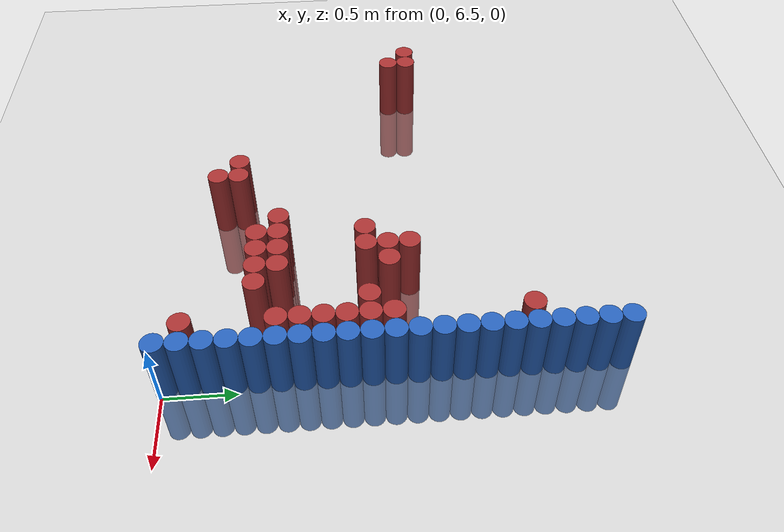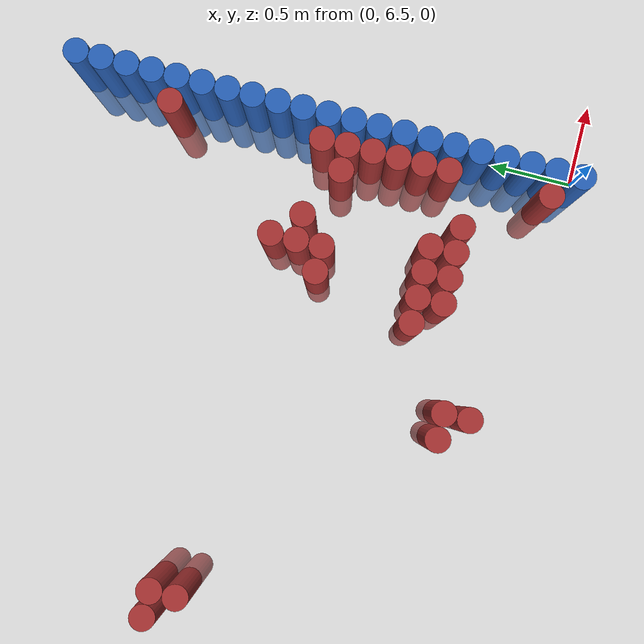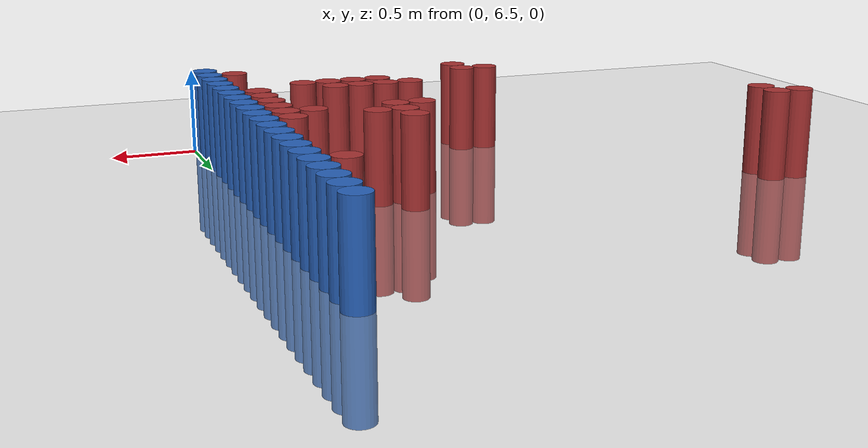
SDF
<sdf version="1.6">
 <world name="default">
  <model name="ground_plane">
   <static>1</static>
   <link name="link">
    <collision name="collision">
     <geometry><plane><normal>0 0 1</normal><size>100 100</size></plane></geometry>
     <surface><friction><ode><mu>100</mu><mu2>50</mu2></ode></friction></surface>
    </collision>
    <visual name="visual">
     <cast_shadows>0</cast_shadows>
     <geometry><plane><normal>0 0 1</normal><size>100 100</size></plane></geometry>
     <material>
      <script><uri>file://media/materials/scripts/gazebo.material</uri><name>Gazebo/Grey</name></script>
     </material>
    </visual>
   </link>
  </model>
  <model name="unit_cylinder_162">
   <static>1</static>
   <pose>-3.075000 8.325000 0.000000 0.000000 0.000000 0.000000</pose>
   <link name="link">
    <inertial>
     <mass>1</mass>
     <inertia><ixx>0.145833</ixx><ixy>0</ixy><ixz>0</ixz><iyy>0.145833</iyy><iyz>0</iyz><izz>0.125</izz></inertia>
    </inertial>
    <collision name="collision">
     <geometry><cylinder><radius>0.075000</radius><length>1</length></cylinder></geometry>
    </collision>
    <visual name="visual">
     <geometry><cylinder><radius>0.075000</radius><length>1</length></cylinder></geometry>
     <material>
      <ambient>0.648000 0.192000 0.192000 1</ambient>
      <diffuse>0.648000 0.192000 0.192000 1</diffuse>
     </material>
     <material>
      <script><name>Gazebo/Grey</name><uri>file://media/materials/scripts/gazebo.material</uri></script>
     </material>
    </visual>
   </link>
  </model>
  <model name="unit_cylinder_163">
   <static>1</static>
   <pose>-2.925000 8.175000 0.000000 0.000000 0.000000 0.000000</pose>
   <link name="link">
    <inertial>
     <mass>1</mass>
     <inertia><ixx>0.145833</ixx><ixy>0</ixy><ixz>0</ixz><iyy>0.145833</iyy><iyz>0</iyz><izz>0.125</izz></inertia>
    </inertial>
    <collision name="collision">
     <geometry><cylinder><radius>0.075000</radius><length>1</length></cylinder></geometry>
    </collision>
    <visual name="visual">
     <geometry><cylinder><radius>0.075000</radius><length>1</length></cylinder></geometry>
     <material>
      <ambient>0.648000 0.192000 0.192000 1</ambient>
      <diffuse>0.648000 0.192000 0.192000 1</diffuse>
     </material>
     <material>
      <script><name>Gazebo/Grey</name><uri>file://media/materials/scripts/gazebo.material</uri></script>
     </material>
    </visual>
   </link>
  </model>
  <model name="unit_cylinder_164">
   <static>1</static>
   <pose>-2.925000 8.325000 0.000000 0.000000 0.000000 0.000000</pose>
   <link name="link">
    <inertial>
     <mass>1</mass>
     <inertia><ixx>0.145833</ixx><ixy>0</ixy><ixz>0</ixz><iyy>0.145833</iyy><iyz>0</iyz><izz>0.125</izz></inertia>
    </inertial>
    <collision name="collision">
     <geometry><cylinder><radius>0.075000</radius><length>1</length></cylinder></geometry>
    </collision>
    <visual name="visual">
     <geometry><cylinder><radius>0.075000</radius><length>1</length></cylinder></geometry>
     <material>
      <ambient>0.648000 0.192000 0.192000 1</ambient>
      <diffuse>0.648000 0.192000 0.192000 1</diffuse>
     </material>
     <material>
      <script><name>Gazebo/Grey</name><uri>file://media/materials/scripts/gazebo.material</uri></script>
     </material>
    </visual>
   </link>
  </model>
  <model name="unit_cylinder_168">
   <static>1</static>
   <pose>-1.725000 6.975000 0.000000 0.000000 0.000000 0.000000</pose>
   <link name="link">
    <inertial>
     <mass>1</mass>
     <inertia><ixx>0.145833</ixx><ixy>0</ixy><ixz>0</ixz><iyy>0.145833</iyy><iyz>0</iyz><izz>0.125</izz></inertia>
    </inertial>
    <collision name="collision">
     <geometry><cylinder><radius>0.075000</radius><length>1</length></cylinder></geometry>
    </collision>
    <visual name="visual">
     <geometry><cylinder><radius>0.075000</radius><length>1</length></cylinder></geometry>
     <material>
      <ambient>0.648000 0.192000 0.192000 1</ambient>
      <diffuse>0.648000 0.192000 0.192000 1</diffuse>
     </material>
     <material>
      <script><name>Gazebo/Grey</name><uri>file://media/materials/scripts/gazebo.material</uri></script>
     </material>
    </visual>
   </link>
  </model>
  <model name="unit_cylinder_169">
   <static>1</static>
   <pose>-1.575000 6.825000 0.000000 0.000000 0.000000 0.000000</pose>
   <link name="link">
    <inertial>
     <mass>1</mass>
     <inertia><ixx>0.145833</ixx><ixy>0</ixy><ixz>0</ixz><iyy>0.145833</iyy><iyz>0</iyz><izz>0.125</izz></inertia>
    </inertial>
    <collision name="collision">
     <geometry><cylinder><radius>0.075000</radius><length>1</length></cylinder></geometry>
    </collision>
    <visual name="visual">
     <geometry><cylinder><radius>0.075000</radius><length>1</length></cylinder></geometry>
     <material>
      <ambient>0.648000 0.192000 0.192000 1</ambient>
      <diffuse>0.648000 0.192000 0.192000 1</diffuse>
     </material>
     <material>
      <script><name>Gazebo/Grey</name><uri>file://media/materials/scripts/gazebo.material</uri></script>
     </material>
    </visual>
   </link>
  </model>
  <model name="unit_cylinder_170">
   <static>1</static>
   <pose>-1.575000 6.975000 0.000000 0.000000 0.000000 0.000000</pose>
   <link name="link">
    <inertial>
     <mass>1</mass>
     <inertia><ixx>0.145833</ixx><ixy>0</ixy><ixz>0</ixz><iyy>0.145833</iyy><iyz>0</iyz><izz>0.125</izz></inertia>
    </inertial>
    <collision name="collision">
     <geometry><cylinder><radius>0.075000</radius><length>1</length></cylinder></geometry>
    </collision>
    <visual name="visual">
     <geometry><cylinder><radius>0.075000</radius><length>1</length></cylinder></geometry>
     <material>
      <ambient>0.648000 0.192000 0.192000 1</ambient>
      <diffuse>0.648000 0.192000 0.192000 1</diffuse>
     </material>
     <material>
      <script><name>Gazebo/Grey</name><uri>file://media/materials/scripts/gazebo.material</uri></script>
     </material>
    </visual>
   </link>
  </model>
  <model name="unit_cylinder_171">
   <static>1</static>
   <pose>-1.125000 7.275000 0.000000 0.000000 0.000000 0.000000</pose>
   <link name="link">
    <inertial>
     <mass>1</mass>
     <inertia><ixx>0.145833</ixx><ixy>0</ixy><ixz>0</ixz><iyy>0.145833</iyy><iyz>0</iyz><izz>0.125</izz></inertia>
    </inertial>
    <collision name="collision">
     <geometry><cylinder><radius>0.075000</radius><length>1</length></cylinder></geometry>
    </collision>
    <visual name="visual">
     <geometry><cylinder><radius>0.075000</radius><length>1</length></cylinder></geometry>
     <material>
      <ambient>0.648000 0.192000 0.192000 1</ambient>
      <diffuse>0.648000 0.192000 0.192000 1</diffuse>
     </material>
     <material>
      <script><name>Gazebo/Grey</name><uri>file://media/materials/scripts/gazebo.material</uri></script>
     </material>
    </visual>
   </link>
  </model>
  <model name="unit_cylinder_175">
   <static>1</static>
   <pose>-0.975000 7.125000 0.000000 0.000000 0.000000 0.000000</pose>
   <link name="link">
    <inertial>
     <mass>1</mass>
     <inertia><ixx>0.145833</ixx><ixy>0</ixy><ixz>0</ixz><iyy>0.145833</iyy><iyz>0</iyz><izz>0.125</izz></inertia>
    </inertial>
    <collision name="collision">
     <geometry><cylinder><radius>0.075000</radius><length>1</length></cylinder></geometry>
    </collision>
    <visual name="visual">
     <geometry><cylinder><radius>0.075000</radius><length>1</length></cylinder></geometry>
     <material>
      <ambient>0.648000 0.192000 0.192000 1</ambient>
      <diffuse>0.648000 0.192000 0.192000 1</diffuse>
     </material>
     <material>
      <script><name>Gazebo/Grey</name><uri>file://media/materials/scripts/gazebo.material</uri></script>
     </material>
    </visual>
   </link>
  </model>
  <model name="unit_cylinder_176">
   <static>1</static>
   <pose>-0.975000 7.275000 0.000000 0.000000 0.000000 0.000000</pose>
   <link name="link">
    <inertial>
     <mass>1</mass>
     <inertia><ixx>0.145833</ixx><ixy>0</ixy><ixz>0</ixz><iyy>0.145833</iyy><iyz>0</iyz><izz>0.125</izz></inertia>
    </inertial>
    <collision name="collision">
     <geometry><cylinder><radius>0.075000</radius><length>1</length></cylinder></geometry>
    </collision>
    <visual name="visual">
     <geometry><cylinder><radius>0.075000</radius><length>1</length></cylinder></geometry>
     <material>
      <ambient>0.648000 0.192000 0.192000 1</ambient>
      <diffuse>0.648000 0.192000 0.192000 1</diffuse>
     </material>
     <material>
      <script><name>Gazebo/Grey</name><uri>file://media/materials/scripts/gazebo.material</uri></script>
     </material>
    </visual>
   </link>
  </model>
  <model name="unit_cylinder_177">
   <static>1</static>
   <pose>-0.975000 7.875000 0.000000 0.000000 0.000000 0.000000</pose>
   <link name="link">
    <inertial>
     <mass>1</mass>
     <inertia><ixx>0.145833</ixx><ixy>0</ixy><ixz>0</ixz><iyy>0.145833</iyy><iyz>0</iyz><izz>0.125</izz></inertia>
    </inertial>
    <collision name="collision">
     <geometry><cylinder><radius>0.075000</radius><length>1</length></cylinder></geometry>
    </collision>
    <visual name="visual">
     <geometry><cylinder><radius>0.075000</radius><length>1</length></cylinder></geometry>
     <material>
      <ambient>0.648000 0.192000 0.192000 1</ambient>
      <diffuse>0.648000 0.192000 0.192000 1</diffuse>
     </material>
     <material>
      <script><name>Gazebo/Grey</name><uri>file://media/materials/scripts/gazebo.material</uri></script>
     </material>
    </visual>
   </link>
  </model>
  <model name="unit_cylinder_179">
   <static>1</static>
   <pose>-0.825000 7.125000 0.000000 0.000000 0.000000 0.000000</pose>
   <link name="link">
    <inertial>
     <mass>1</mass>
     <inertia><ixx>0.145833</ixx><ixy>0</ixy><ixz>0</ixz><iyy>0.145833</iyy><iyz>0</iyz><izz>0.125</izz></inertia>
    </inertial>
    <collision name="collision">
     <geometry><cylinder><radius>0.075000</radius><length>1</length></cylinder></geometry>
    </collision>
    <visual name="visual">
     <geometry><cylinder><radius>0.075000</radius><length>1</length></cylinder></geometry>
     <material>
      <ambient>0.648000 0.192000 0.192000 1</ambient>
      <diffuse>0.648000 0.192000 0.192000 1</diffuse>
     </material>
     <material>
      <script><name>Gazebo/Grey</name><uri>file://media/materials/scripts/gazebo.material</uri></script>
     </material>
    </visual>
   </link>
  </model>
  <model name="unit_cylinder_180">
   <static>1</static>
   <pose>-0.825000 7.275000 0.000000 0.000000 0.000000 0.000000</pose>
   <link name="link">
    <inertial>
     <mass>1</mass>
     <inertia><ixx>0.145833</ixx><ixy>0</ixy><ixz>0</ixz><iyy>0.145833</iyy><iyz>0</iyz><izz>0.125</izz></inertia>
    </inertial>
    <collision name="collision">
     <geometry><cylinder><radius>0.075000</radius><length>1</length></cylinder></geometry>
    </collision>
    <visual name="visual">
     <geometry><cylinder><radius>0.075000</radius><length>1</length></cylinder></geometry>
     <material>
      <ambient>0.648000 0.192000 0.192000 1</ambient>
      <diffuse>0.648000 0.192000 0.192000 1</diffuse>
     </material>
     <material>
      <script><name>Gazebo/Grey</name><uri>file://media/materials/scripts/gazebo.material</uri></script>
     </material>
    </visual>
   </link>
  </model>
  <model name="unit_cylinder_181">
   <static>1</static>
   <pose>-0.825000 7.875000 0.000000 0.000000 0.000000 0.000000</pose>
   <link name="link">
    <inertial>
     <mass>1</mass>
     <inertia><ixx>0.145833</ixx><ixy>0</ixy><ixz>0</ixz><iyy>0.145833</iyy><iyz>0</iyz><izz>0.125</izz></inertia>
    </inertial>
    <collision name="collision">
     <geometry><cylinder><radius>0.075000</radius><length>1</length></cylinder></geometry>
    </collision>
    <visual name="visual">
     <geometry><cylinder><radius>0.075000</radius><length>1</length></cylinder></geometry>
     <material>
      <ambient>0.648000 0.192000 0.192000 1</ambient>
      <diffuse>0.648000 0.192000 0.192000 1</diffuse>
     </material>
     <material>
      <script><name>Gazebo/Grey</name><uri>file://media/materials/scripts/gazebo.material</uri></script>
     </material>
    </visual>
   </link>
  </model>
  <model name="unit_cylinder_182">
   <static>1</static>
   <pose>-0.825000 8.025000 0.000000 0.000000 0.000000 0.000000</pose>
   <link name="link">
    <inertial>
     <mass>1</mass>
     <inertia><ixx>0.145833</ixx><ixy>0</ixy><ixz>0</ixz><iyy>0.145833</iyy><iyz>0</iyz><izz>0.125</izz></inertia>
    </inertial>
    <collision name="collision">
     <geometry><cylinder><radius>0.075000</radius><length>1</length></cylinder></geometry>
    </collision>
    <visual name="visual">
     <geometry><cylinder><radius>0.075000</radius><length>1</length></cylinder></geometry>
     <material>
      <ambient>0.648000 0.192000 0.192000 1</ambient>
      <diffuse>0.648000 0.192000 0.192000 1</diffuse>
     </material>
     <material>
      <script><name>Gazebo/Grey</name><uri>file://media/materials/scripts/gazebo.material</uri></script>
     </material>
    </visual>
   </link>
  </model>
  <model name="unit_cylinder_183">
   <static>1</static>
   <pose>-0.825000 8.175000 0.000000 0.000000 0.000000 0.000000</pose>
   <link name="link">
    <inertial>
     <mass>1</mass>
     <inertia><ixx>0.145833</ixx><ixy>0</ixy><ixz>0</ixz><iyy>0.145833</iyy><iyz>0</iyz><izz>0.125</izz></inertia>
    </inertial>
    <collision name="collision">
     <geometry><cylinder><radius>0.075000</radius><length>1</length></cylinder></geometry>
    </collision>
    <visual name="visual">
     <geometry><cylinder><radius>0.075000</radius><length>1</length></cylinder></geometry>
     <material>
      <ambient>0.648000 0.192000 0.192000 1</ambient>
      <diffuse>0.648000 0.192000 0.192000 1</diffuse>
     </material>
     <material>
      <script><name>Gazebo/Grey</name><uri>file://media/materials/scripts/gazebo.material</uri></script>
     </material>
    </visual>
   </link>
  </model>
  <model name="unit_cylinder_184">
   <static>1</static>
   <pose>-0.675000 7.125000 0.000000 0.000000 0.000000 0.000000</pose>
   <link name="link">
    <inertial>
     <mass>1</mass>
     <inertia><ixx>0.145833</ixx><ixy>0</ixy><ixz>0</ixz><iyy>0.145833</iyy><iyz>0</iyz><izz>0.125</izz></inertia>
    </inertial>
    <collision name="collision">
     <geometry><cylinder><radius>0.075000</radius><length>1</length></cylinder></geometry>
    </collision>
    <visual name="visual">
     <geometry><cylinder><radius>0.075000</radius><length>1</length></cylinder></geometry>
     <material>
      <ambient>0.648000 0.192000 0.192000 1</ambient>
      <diffuse>0.648000 0.192000 0.192000 1</diffuse>
     </material>
     <material>
      <script><name>Gazebo/Grey</name><uri>file://media/materials/scripts/gazebo.material</uri></script>
     </material>
    </visual>
   </link>
  </model>
  <model name="unit_cylinder_185">
   <static>1</static>
   <pose>-0.675000 7.275000 0.000000 0.000000 0.000000 0.000000</pose>
   <link name="link">
    <inertial>
     <mass>1</mass>
     <inertia><ixx>0.145833</ixx><ixy>0</ixy><ixz>0</ixz><iyy>0.145833</iyy><iyz>0</iyz><izz>0.125</izz></inertia>
    </inertial>
    <collision name="collision">
     <geometry><cylinder><radius>0.075000</radius><length>1</length></cylinder></geometry>
    </collision>
    <visual name="visual">
     <geometry><cylinder><radius>0.075000</radius><length>1</length></cylinder></geometry>
     <material>
      <ambient>0.648000 0.192000 0.192000 1</ambient>
      <diffuse>0.648000 0.192000 0.192000 1</diffuse>
     </material>
     <material>
      <script><name>Gazebo/Grey</name><uri>file://media/materials/scripts/gazebo.material</uri></script>
     </material>
    </visual>
   </link>
  </model>
  <model name="unit_cylinder_186">
   <static>1</static>
   <pose>-0.675000 8.025000 0.000000 0.000000 0.000000 0.000000</pose>
   <link name="link">
    <inertial>
     <mass>1</mass>
     <inertia><ixx>0.145833</ixx><ixy>0</ixy><ixz>0</ixz><iyy>0.145833</iyy><iyz>0</iyz><izz>0.125</izz></inertia>
    </inertial>
    <collision name="collision">
     <geometry><cylinder><radius>0.075000</radius><length>1</length></cylinder></geometry>
    </collision>
    <visual name="visual">
     <geometry><cylinder><radius>0.075000</radius><length>1</length></cylinder></geometry>
     <material>
      <ambient>0.648000 0.192000 0.192000 1</ambient>
      <diffuse>0.648000 0.192000 0.192000 1</diffuse>
     </material>
     <material>
      <script><name>Gazebo/Grey</name><uri>file://media/materials/scripts/gazebo.material</uri></script>
     </material>
    </visual>
   </link>
  </model>
  <model name="unit_cylinder_188">
   <static>1</static>
   <pose>-0.525000 7.125000 0.000000 0.000000 0.000000 0.000000</pose>
   <link name="link">
    <inertial>
     <mass>1</mass>
     <inertia><ixx>0.145833</ixx><ixy>0</ixy><ixz>0</ixz><iyy>0.145833</iyy><iyz>0</iyz><izz>0.125</izz></inertia>
    </inertial>
    <collision name="collision">
     <geometry><cylinder><radius>0.075000</radius><length>1</length></cylinder></geometry>
    </collision>
    <visual name="visual">
     <geometry><cylinder><radius>0.075000</radius><length>1</length></cylinder></geometry>
     <material>
      <ambient>0.648000 0.192000 0.192000 1</ambient>
      <diffuse>0.648000 0.192000 0.192000 1</diffuse>
     </material>
     <material>
      <script><name>Gazebo/Grey</name><uri>file://media/materials/scripts/gazebo.material</uri></script>
     </material>
    </visual>
   </link>
  </model>
  <model name="unit_cylinder_193">
   <static>1</static>
   <pose>-0.375000 7.875000 0.000000 0.000000 0.000000 0.000000</pose>
   <link name="link">
    <inertial>
     <mass>1</mass>
     <inertia><ixx>0.145833</ixx><ixy>0</ixy><ixz>0</ixz><iyy>0.145833</iyy><iyz>0</iyz><izz>0.125</izz></inertia>
    </inertial>
    <collision name="collision">
     <geometry><cylinder><radius>0.075000</radius><length>1</length></cylinder></geometry>
    </collision>
    <visual name="visual">
     <geometry><cylinder><radius>0.075000</radius><length>1</length></cylinder></geometry>
     <material>
      <ambient>0.648000 0.192000 0.192000 1</ambient>
      <diffuse>0.648000 0.192000 0.192000 1</diffuse>
     </material>
     <material>
      <script><name>Gazebo/Grey</name><uri>file://media/materials/scripts/gazebo.material</uri></script>
     </material>
    </visual>
   </link>
  </model>
  <model name="unit_cylinder_204">
   <static>1</static>
   <pose>-0.225000 6.675000 0.000000 0.000000 0.000000 0.000000</pose>
   <link name="link">
    <inertial>
     <mass>1</mass>
     <inertia><ixx>0.145833</ixx><ixy>0</ixy><ixz>0</ixz><iyy>0.145833</iyy><iyz>0</iyz><izz>0.125</izz></inertia>
    </inertial>
    <collision name="collision">
     <geometry><cylinder><radius>0.075000</radius><length>1</length></cylinder></geometry>
    </collision>
    <visual name="visual">
     <geometry><cylinder><radius>0.075000</radius><length>1</length></cylinder></geometry>
     <material>
      <ambient>0.648000 0.192000 0.192000 1</ambient>
      <diffuse>0.648000 0.192000 0.192000 1</diffuse>
     </material>
     <material>
      <script><name>Gazebo/Grey</name><uri>file://media/materials/scripts/gazebo.material</uri></script>
     </material>
    </visual>
   </link>
  </model>
  <model name="unit_cylinder_205">
   <static>1</static>
   <pose>-0.225000 7.275000 0.000000 0.000000 0.000000 0.000000</pose>
   <link name="link">
    <inertial>
     <mass>1</mass>
     <inertia><ixx>0.145833</ixx><ixy>0</ixy><ixz>0</ixz><iyy>0.145833</iyy><iyz>0</iyz><izz>0.125</izz></inertia>
    </inertial>
    <collision name="collision">
     <geometry><cylinder><radius>0.075000</radius><length>1</length></cylinder></geometry>
    </collision>
    <visual name="visual">
     <geometry><cylinder><radius>0.075000</radius><length>1</length></cylinder></geometry>
     <material>
      <ambient>0.648000 0.192000 0.192000 1</ambient>
      <diffuse>0.648000 0.192000 0.192000 1</diffuse>
     </material>
     <material>
      <script><name>Gazebo/Grey</name><uri>file://media/materials/scripts/gazebo.material</uri></script>
     </material>
    </visual>
   </link>
  </model>
  <model name="unit_cylinder_206">
   <static>1</static>
   <pose>-0.225000 7.425000 0.000000 0.000000 0.000000 0.000000</pose>
   <link name="link">
    <inertial>
     <mass>1</mass>
     <inertia><ixx>0.145833</ixx><ixy>0</ixy><ixz>0</ixz><iyy>0.145833</iyy><iyz>0</iyz><izz>0.125</izz></inertia>
    </inertial>
    <collision name="collision">
     <geometry><cylinder><radius>0.075000</radius><length>1</length></cylinder></geometry>
    </collision>
    <visual name="visual">
     <geometry><cylinder><radius>0.075000</radius><length>1</length></cylinder></geometry>
     <material>
      <ambient>0.648000 0.192000 0.192000 1</ambient>
      <diffuse>0.648000 0.192000 0.192000 1</diffuse>
     </material>
     <material>
      <script><name>Gazebo/Grey</name><uri>file://media/materials/scripts/gazebo.material</uri></script>
     </material>
    </visual>
   </link>
  </model>
  <model name="unit_cylinder_207">
   <static>1</static>
   <pose>-0.225000 7.575000 0.000000 0.000000 0.000000 0.000000</pose>
   <link name="link">
    <inertial>
     <mass>1</mass>
     <inertia><ixx>0.145833</ixx><ixy>0</ixy><ixz>0</ixz><iyy>0.145833</iyy><iyz>0</iyz><izz>0.125</izz></inertia>
    </inertial>
    <collision name="collision">
     <geometry><cylinder><radius>0.075000</radius><length>1</length></cylinder></geometry>
    </collision>
    <visual name="visual">
     <geometry><cylinder><radius>0.075000</radius><length>1</length></cylinder></geometry>
     <material>
      <ambient>0.648000 0.192000 0.192000 1</ambient>
      <diffuse>0.648000 0.192000 0.192000 1</diffuse>
     </material>
     <material>
      <script><name>Gazebo/Grey</name><uri>file://media/materials/scripts/gazebo.material</uri></script>
     </material>
    </visual>
   </link>
  </model>
  <model name="unit_cylinder_208">
   <static>1</static>
   <pose>-0.225000 7.725000 0.000000 0.000000 0.000000 0.000000</pose>
   <link name="link">
    <inertial>
     <mass>1</mass>
     <inertia><ixx>0.145833</ixx><ixy>0</ixy><ixz>0</ixz><iyy>0.145833</iyy><iyz>0</iyz><izz>0.125</izz></inertia>
    </inertial>
    <collision name="collision">
     <geometry><cylinder><radius>0.075000</radius><length>1</length></cylinder></geometry>
    </collision>
    <visual name="visual">
     <geometry><cylinder><radius>0.075000</radius><length>1</length></cylinder></geometry>
     <material>
      <ambient>0.648000 0.192000 0.192000 1</ambient>
      <diffuse>0.648000 0.192000 0.192000 1</diffuse>
     </material>
     <material>
      <script><name>Gazebo/Grey</name><uri>file://media/materials/scripts/gazebo.material</uri></script>
     </material>
    </visual>
   </link>
  </model>
  <model name="unit_cylinder_209">
   <static>1</static>
   <pose>-0.225000 7.875000 0.000000 0.000000 0.000000 0.000000</pose>
   <link name="link">
    <inertial>
     <mass>1</mass>
     <inertia><ixx>0.145833</ixx><ixy>0</ixy><ixz>0</ixz><iyy>0.145833</iyy><iyz>0</iyz><izz>0.125</izz></inertia>
    </inertial>
    <collision name="collision">
     <geometry><cylinder><radius>0.075000</radius><length>1</length></cylinder></geometry>
    </collision>
    <visual name="visual">
     <geometry><cylinder><radius>0.075000</radius><length>1</length></cylinder></geometry>
     <material>
      <ambient>0.648000 0.192000 0.192000 1</ambient>
      <diffuse>0.648000 0.192000 0.192000 1</diffuse>
     </material>
     <material>
      <script><name>Gazebo/Grey</name><uri>file://media/materials/scripts/gazebo.material</uri></script>
     </material>
    </visual>
   </link>
  </model>
  <model name="unit_cylinder_210">
   <static>1</static>
   <pose>-0.225000 8.025000 0.000000 0.000000 0.000000 0.000000</pose>
   <link name="link">
    <inertial>
     <mass>1</mass>
     <inertia><ixx>0.145833</ixx><ixy>0</ixy><ixz>0</ixz><iyy>0.145833</iyy><iyz>0</iyz><izz>0.125</izz></inertia>
    </inertial>
    <collision name="collision">
     <geometry><cylinder><radius>0.075000</radius><length>1</length></cylinder></geometry>
    </collision>
    <visual name="visual">
     <geometry><cylinder><radius>0.075000</radius><length>1</length></cylinder></geometry>
     <material>
      <ambient>0.648000 0.192000 0.192000 1</ambient>
      <diffuse>0.648000 0.192000 0.192000 1</diffuse>
     </material>
     <material>
      <script><name>Gazebo/Grey</name><uri>file://media/materials/scripts/gazebo.material</uri></script>
     </material>
    </visual>
   </link>
  </model>
  <model name="unit_cylinder_211">
   <static>1</static>
   <pose>-0.225000 8.925000 0.000000 0.000000 0.000000 0.000000</pose>
   <link name="link">
    <inertial>
     <mass>1</mass>
     <inertia><ixx>0.145833</ixx><ixy>0</ixy><ixz>0</ixz><iyy>0.145833</iyy><iyz>0</iyz><izz>0.125</izz></inertia>
    </inertial>
    <collision name="collision">
     <geometry><cylinder><radius>0.075000</radius><length>1</length></cylinder></geometry>
    </collision>
    <visual name="visual">
     <geometry><cylinder><radius>0.075000</radius><length>1</length></cylinder></geometry>
     <material>
      <ambient>0.648000 0.192000 0.192000 1</ambient>
      <diffuse>0.648000 0.192000 0.192000 1</diffuse>
     </material>
     <material>
      <script><name>Gazebo/Grey</name><uri>file://media/materials/scripts/gazebo.material</uri></script>
     </material>
    </visual>
   </link>
  </model>
  <model name="unit_cylinder_221">
   <static>1</static>
   <pose>-0.075000 6.525000 0.000000 0.000000 0.000000 0.000000</pose>
   <link name="link">
    <inertial>
     <mass>1</mass>
     <inertia><ixx>0.145833</ixx><ixy>0</ixy><ixz>0</ixz><iyy>0.145833</iyy><iyz>0</iyz><izz>0.125</izz></inertia>
    </inertial>
    <collision name="collision">
     <geometry><cylinder><radius>0.075000</radius><length>1</length></cylinder></geometry>
    </collision>
    <visual name="visual">
     <geometry><cylinder><radius>0.075000</radius><length>1</length></cylinder></geometry>
     <material>
      <ambient>0.152000 0.379000 0.720000 1</ambient>
      <diffuse>0.152000 0.379000 0.720000 1</diffuse>
     </material>
     <material>
      <script><name>Gazebo/Grey</name><uri>file://media/materials/scripts/gazebo.material</uri></script>
     </material>
    </visual>
   </link>
  </model>
  <model name="unit_cylinder_222">
   <static>1</static>
   <pose>-0.075000 6.675000 0.000000 0.000000 0.000000 0.000000</pose>
   <link name="link">
    <inertial>
     <mass>1</mass>
     <inertia><ixx>0.145833</ixx><ixy>0</ixy><ixz>0</ixz><iyy>0.145833</iyy><iyz>0</iyz><izz>0.125</izz></inertia>
    </inertial>
    <collision name="collision">
     <geometry><cylinder><radius>0.075000</radius><length>1</length></cylinder></geometry>
    </collision>
    <visual name="visual">
     <geometry><cylinder><radius>0.075000</radius><length>1</length></cylinder></geometry>
     <material>
      <ambient>0.152000 0.379000 0.720000 1</ambient>
      <diffuse>0.152000 0.379000 0.720000 1</diffuse>
     </material>
     <material>
      <script><name>Gazebo/Grey</name><uri>file://media/materials/scripts/gazebo.material</uri></script>
     </material>
    </visual>
   </link>
  </model>
  <model name="unit_cylinder_223">
   <static>1</static>
   <pose>-0.075000 6.825000 0.000000 0.000000 0.000000 0.000000</pose>
   <link name="link">
    <inertial>
     <mass>1</mass>
     <inertia><ixx>0.145833</ixx><ixy>0</ixy><ixz>0</ixz><iyy>0.145833</iyy><iyz>0</iyz><izz>0.125</izz></inertia>
    </inertial>
    <collision name="collision">
     <geometry><cylinder><radius>0.075000</radius><length>1</length></cylinder></geometry>
    </collision>
    <visual name="visual">
     <geometry><cylinder><radius>0.075000</radius><length>1</length></cylinder></geometry>
     <material>
      <ambient>0.152000 0.379000 0.720000 1</ambient>
      <diffuse>0.152000 0.379000 0.720000 1</diffuse>
     </material>
     <material>
      <script><name>Gazebo/Grey</name><uri>file://media/materials/scripts/gazebo.material</uri></script>
     </material>
    </visual>
   </link>
  </model>
  <model name="unit_cylinder_224">
   <static>1</static>
   <pose>-0.075000 6.975000 0.000000 0.000000 0.000000 0.000000</pose>
   <link name="link">
    <inertial>
     <mass>1</mass>
     <inertia><ixx>0.145833</ixx><ixy>0</ixy><ixz>0</ixz><iyy>0.145833</iyy><iyz>0</iyz><izz>0.125</izz></inertia>
    </inertial>
    <collision name="collision">
     <geometry><cylinder><radius>0.075000</radius><length>1</length></cylinder></geometry>
    </collision>
    <visual name="visual">
     <geometry><cylinder><radius>0.075000</radius><length>1</length></cylinder></geometry>
     <material>
      <ambient>0.152000 0.379000 0.720000 1</ambient>
      <diffuse>0.152000 0.379000 0.720000 1</diffuse>
     </material>
     <material>
      <script><name>Gazebo/Grey</name><uri>file://media/materials/scripts/gazebo.material</uri></script>
     </material>
    </visual>
   </link>
  </model>
  <model name="unit_cylinder_225">
   <static>1</static>
   <pose>-0.075000 7.125000 0.000000 0.000000 0.000000 0.000000</pose>
   <link name="link">
    <inertial>
     <mass>1</mass>
     <inertia><ixx>0.145833</ixx><ixy>0</ixy><ixz>0</ixz><iyy>0.145833</iyy><iyz>0</iyz><izz>0.125</izz></inertia>
    </inertial>
    <collision name="collision">
     <geometry><cylinder><radius>0.075000</radius><length>1</length></cylinder></geometry>
    </collision>
    <visual name="visual">
     <geometry><cylinder><radius>0.075000</radius><length>1</length></cylinder></geometry>
     <material>
      <ambient>0.152000 0.379000 0.720000 1</ambient>
      <diffuse>0.152000 0.379000 0.720000 1</diffuse>
     </material>
     <material>
      <script><name>Gazebo/Grey</name><uri>file://media/materials/scripts/gazebo.material</uri></script>
     </material>
    </visual>
   </link>
  </model>
  <model name="unit_cylinder_226">
   <static>1</static>
   <pose>-0.075000 7.275000 0.000000 0.000000 0.000000 0.000000</pose>
   <link name="link">
    <inertial>
     <mass>1</mass>
     <inertia><ixx>0.145833</ixx><ixy>0</ixy><ixz>0</ixz><iyy>0.145833</iyy><iyz>0</iyz><izz>0.125</izz></inertia>
    </inertial>
    <collision name="collision">
     <geometry><cylinder><radius>0.075000</radius><length>1</length></cylinder></geometry>
    </collision>
    <visual name="visual">
     <geometry><cylinder><radius>0.075000</radius><length>1</length></cylinder></geometry>
     <material>
      <ambient>0.152000 0.379000 0.720000 1</ambient>
      <diffuse>0.152000 0.379000 0.720000 1</diffuse>
     </material>
     <material>
      <script><name>Gazebo/Grey</name><uri>file://media/materials/scripts/gazebo.material</uri></script>
     </material>
    </visual>
   </link>
  </model>
  <model name="unit_cylinder_227">
   <static>1</static>
   <pose>-0.075000 7.425000 0.000000 0.000000 0.000000 0.000000</pose>
   <link name="link">
    <inertial>
     <mass>1</mass>
     <inertia><ixx>0.145833</ixx><ixy>0</ixy><ixz>0</ixz><iyy>0.145833</iyy><iyz>0</iyz><izz>0.125</izz></inertia>
    </inertial>
    <collision name="collision">
     <geometry><cylinder><radius>0.075000</radius><length>1</length></cylinder></geometry>
    </collision>
    <visual name="visual">
     <geometry><cylinder><radius>0.075000</radius><length>1</length></cylinder></geometry>
     <material>
      <ambient>0.152000 0.379000 0.720000 1</ambient>
      <diffuse>0.152000 0.379000 0.720000 1</diffuse>
     </material>
     <material>
      <script><name>Gazebo/Grey</name><uri>file://media/materials/scripts/gazebo.material</uri></script>
     </material>
    </visual>
   </link>
  </model>
  <model name="unit_cylinder_228">
   <static>1</static>
   <pose>-0.075000 7.575000 0.000000 0.000000 0.000000 0.000000</pose>
   <link name="link">
    <inertial>
     <mass>1</mass>
     <inertia><ixx>0.145833</ixx><ixy>0</ixy><ixz>0</ixz><iyy>0.145833</iyy><iyz>0</iyz><izz>0.125</izz></inertia>
    </inertial>
    <collision name="collision">
     <geometry><cylinder><radius>0.075000</radius><length>1</length></cylinder></geometry>
    </collision>
    <visual name="visual">
     <geometry><cylinder><radius>0.075000</radius><length>1</length></cylinder></geometry>
     <material>
      <ambient>0.152000 0.379000 0.720000 1</ambient>
      <diffuse>0.152000 0.379000 0.720000 1</diffuse>
     </material>
     <material>
      <script><name>Gazebo/Grey</name><uri>file://media/materials/scripts/gazebo.material</uri></script>
     </material>
    </visual>
   </link>
  </model>
  <model name="unit_cylinder_229">
   <static>1</static>
   <pose>-0.075000 7.725000 0.000000 0.000000 0.000000 0.000000</pose>
   <link name="link">
    <inertial>
     <mass>1</mass>
     <inertia><ixx>0.145833</ixx><ixy>0</ixy><ixz>0</ixz><iyy>0.145833</iyy><iyz>0</iyz><izz>0.125</izz></inertia>
    </inertial>
    <collision name="collision">
     <geometry><cylinder><radius>0.075000</radius><length>1</length></cylinder></geometry>
    </collision>
    <visual name="visual">
     <geometry><cylinder><radius>0.075000</radius><length>1</length></cylinder></geometry>
     <material>
      <ambient>0.152000 0.379000 0.720000 1</ambient>
      <diffuse>0.152000 0.379000 0.720000 1</diffuse>
     </material>
     <material>
      <script><name>Gazebo/Grey</name><uri>file://media/materials/scripts/gazebo.material</uri></script>
     </material>
    </visual>
   </link>
  </model>
  <model name="unit_cylinder_230">
   <static>1</static>
   <pose>-0.075000 7.875000 0.000000 0.000000 0.000000 0.000000</pose>
   <link name="link">
    <inertial>
     <mass>1</mass>
     <inertia><ixx>0.145833</ixx><ixy>0</ixy><ixz>0</ixz><iyy>0.145833</iyy><iyz>0</iyz><izz>0.125</izz></inertia>
    </inertial>
    <collision name="collision">
     <geometry><cylinder><radius>0.075000</radius><length>1</length></cylinder></geometry>
    </collision>
    <visual name="visual">
     <geometry><cylinder><radius>0.075000</radius><length>1</length></cylinder></geometry>
     <material>
      <ambient>0.152000 0.379000 0.720000 1</ambient>
      <diffuse>0.152000 0.379000 0.720000 1</diffuse>
     </material>
     <material>
      <script><name>Gazebo/Grey</name><uri>file://media/materials/scripts/gazebo.material</uri></script>
     </material>
    </visual>
   </link>
  </model>
  <model name="unit_cylinder_231">
   <static>1</static>
   <pose>-0.075000 8.025000 0.000000 0.000000 0.000000 0.000000</pose>
   <link name="link">
    <inertial>
     <mass>1</mass>
     <inertia><ixx>0.145833</ixx><ixy>0</ixy><ixz>0</ixz><iyy>0.145833</iyy><iyz>0</iyz><izz>0.125</izz></inertia>
    </inertial>
    <collision name="collision">
     <geometry><cylinder><radius>0.075000</radius><length>1</length></cylinder></geometry>
    </collision>
    <visual name="visual">
     <geometry><cylinder><radius>0.075000</radius><length>1</length></cylinder></geometry>
     <material>
      <ambient>0.152000 0.379000 0.720000 1</ambient>
      <diffuse>0.152000 0.379000 0.720000 1</diffuse>
     </material>
     <material>
      <script><name>Gazebo/Grey</name><uri>file://media/materials/scripts/gazebo.material</uri></script>
     </material>
    </visual>
   </link>
  </model>
  <model name="unit_cylinder_232">
   <static>1</static>
   <pose>-0.075000 8.175000 0.000000 0.000000 0.000000 0.000000</pose>
   <link name="link">
    <inertial>
     <mass>1</mass>
     <inertia><ixx>0.145833</ixx><ixy>0</ixy><ixz>0</ixz><iyy>0.145833</iyy><iyz>0</iyz><izz>0.125</izz></inertia>
    </inertial>
    <collision name="collision">
     <geometry><cylinder><radius>0.075000</radius><length>1</length></cylinder></geometry>
    </collision>
    <visual name="visual">
     <geometry><cylinder><radius>0.075000</radius><length>1</length></cylinder></geometry>
     <material>
      <ambient>0.152000 0.379000 0.720000 1</ambient>
      <diffuse>0.152000 0.379000 0.720000 1</diffuse>
     </material>
     <material>
      <script><name>Gazebo/Grey</name><uri>file://media/materials/scripts/gazebo.material</uri></script>
     </material>
    </visual>
   </link>
  </model>
  <model name="unit_cylinder_233">
   <static>1</static>
   <pose>-0.075000 8.325000 0.000000 0.000000 0.000000 0.000000</pose>
   <link name="link">
    <inertial>
     <mass>1</mass>
     <inertia><ixx>0.145833</ixx><ixy>0</ixy><ixz>0</ixz><iyy>0.145833</iyy><iyz>0</iyz><izz>0.125</izz></inertia>
    </inertial>
    <collision name="collision">
     <geometry><cylinder><radius>0.075000</radius><length>1</length></cylinder></geometry>
    </collision>
    <visual name="visual">
     <geometry><cylinder><radius>0.075000</radius><length>1</length></cylinder></geometry>
     <material>
      <ambient>0.152000 0.379000 0.720000 1</ambient>
      <diffuse>0.152000 0.379000 0.720000 1</diffuse>
     </material>
     <material>
      <script><name>Gazebo/Grey</name><uri>file://media/materials/scripts/gazebo.material</uri></script>
     </material>
    </visual>
   </link>
  </model>
  <model name="unit_cylinder_234">
   <static>1</static>
   <pose>-0.075000 8.475000 0.000000 0.000000 0.000000 0.000000</pose>
   <link name="link">
    <inertial>
     <mass>1</mass>
     <inertia><ixx>0.145833</ixx><ixy>0</ixy><ixz>0</ixz><iyy>0.145833</iyy><iyz>0</iyz><izz>0.125</izz></inertia>
    </inertial>
    <collision name="collision">
     <geometry><cylinder><radius>0.075000</radius><length>1</length></cylinder></geometry>
    </collision>
    <visual name="visual">
     <geometry><cylinder><radius>0.075000</radius><length>1</length></cylinder></geometry>
     <material>
      <ambient>0.152000 0.379000 0.720000 1</ambient>
      <diffuse>0.152000 0.379000 0.720000 1</diffuse>
     </material>
     <material>
      <script><name>Gazebo/Grey</name><uri>file://media/materials/scripts/gazebo.material</uri></script>
     </material>
    </visual>
   </link>
  </model>
  <model name="unit_cylinder_235">
   <static>1</static>
   <pose>-0.075000 8.625000 0.000000 0.000000 0.000000 0.000000</pose>
   <link name="link">
    <inertial>
     <mass>1</mass>
     <inertia><ixx>0.145833</ixx><ixy>0</ixy><ixz>0</ixz><iyy>0.145833</iyy><iyz>0</iyz><izz>0.125</izz></inertia>
    </inertial>
    <collision name="collision">
     <geometry><cylinder><radius>0.075000</radius><length>1</length></cylinder></geometry>
    </collision>
    <visual name="visual">
     <geometry><cylinder><radius>0.075000</radius><length>1</length></cylinder></geometry>
     <material>
      <ambient>0.152000 0.379000 0.720000 1</ambient>
      <diffuse>0.152000 0.379000 0.720000 1</diffuse>
     </material>
     <material>
      <script><name>Gazebo/Grey</name><uri>file://media/materials/scripts/gazebo.material</uri></script>
     </material>
    </visual>
   </link>
  </model>
  <model name="unit_cylinder_236">
   <static>1</static>
   <pose>-0.075000 8.775000 0.000000 0.000000 0.000000 0.000000</pose>
   <link name="link">
    <inertial>
     <mass>1</mass>
     <inertia><ixx>0.145833</ixx><ixy>0</ixy><ixz>0</ixz><iyy>0.145833</iyy><iyz>0</iyz><izz>0.125</izz></inertia>
    </inertial>
    <collision name="collision">
     <geometry><cylinder><radius>0.075000</radius><length>1</length></cylinder></geometry>
    </collision>
    <visual name="visual">
     <geometry><cylinder><radius>0.075000</radius><length>1</length></cylinder></geometry>
     <material>
      <ambient>0.152000 0.379000 0.720000 1</ambient>
      <diffuse>0.152000 0.379000 0.720000 1</diffuse>
     </material>
     <material>
      <script><name>Gazebo/Grey</name><uri>file://media/materials/scripts/gazebo.material</uri></script>
     </material>
    </visual>
   </link>
  </model>
  <model name="unit_cylinder_237">
   <static>1</static>
   <pose>-0.075000 8.925000 0.000000 0.000000 0.000000 0.000000</pose>
   <link name="link">
    <inertial>
     <mass>1</mass>
     <inertia><ixx>0.145833</ixx><ixy>0</ixy><ixz>0</ixz><iyy>0.145833</iyy><iyz>0</iyz><izz>0.125</izz></inertia>
    </inertial>
    <collision name="collision">
     <geometry><cylinder><radius>0.075000</radius><length>1</length></cylinder></geometry>
    </collision>
    <visual name="visual">
     <geometry><cylinder><radius>0.075000</radius><length>1</length></cylinder></geometry>
     <material>
      <ambient>0.152000 0.379000 0.720000 1</ambient>
      <diffuse>0.152000 0.379000 0.720000 1</diffuse>
     </material>
     <material>
      <script><name>Gazebo/Grey</name><uri>file://media/materials/scripts/gazebo.material</uri></script>
     </material>
    </visual>
   </link>
  </model>
  <model name="unit_cylinder_238">
   <static>1</static>
   <pose>-0.075000 9.075000 0.000000 0.000000 0.000000 0.000000</pose>
   <link name="link">
    <inertial>
     <mass>1</mass>
     <inertia><ixx>0.145833</ixx><ixy>0</ixy><ixz>0</ixz><iyy>0.145833</iyy><iyz>0</iyz><izz>0.125</izz></inertia>
    </inertial>
    <collision name="collision">
     <geometry><cylinder><radius>0.075000</radius><length>1</length></cylinder></geometry>
    </collision>
    <visual name="visual">
     <geometry><cylinder><radius>0.075000</radius><length>1</length></cylinder></geometry>
     <material>
      <ambient>0.152000 0.379000 0.720000 1</ambient>
      <diffuse>0.152000 0.379000 0.720000 1</diffuse>
     </material>
     <material>
      <script><name>Gazebo/Grey</name><uri>file://media/materials/scripts/gazebo.material</uri></script>
     </material>
    </visual>
   </link>
  </model>
  <model name="unit_cylinder_239">
   <static>1</static>
   <pose>-0.075000 9.225000 0.000000 0.000000 0.000000 0.000000</pose>
   <link name="link">
    <inertial>
     <mass>1</mass>
     <inertia><ixx>0.145833</ixx><ixy>0</ixy><ixz>0</ixz><iyy>0.145833</iyy><iyz>0</iyz><izz>0.125</izz></inertia>
    </inertial>
    <collision name="collision">
     <geometry><cylinder><radius>0.075000</radius><length>1</length></cylinder></geometry>
    </collision>
    <visual name="visual">
     <geometry><cylinder><radius>0.075000</radius><length>1</length></cylinder></geometry>
     <material>
      <ambient>0.152000 0.379000 0.720000 1</ambient>
      <diffuse>0.152000 0.379000 0.720000 1</diffuse>
     </material>
     <material>
      <script><name>Gazebo/Grey</name><uri>file://media/materials/scripts/gazebo.material</uri></script>
     </material>
    </visual>
   </link>
  </model>
  <model name="unit_cylinder_240">
   <static>1</static>
   <pose>-0.075000 9.375000 0.000000 0.000000 0.000000 0.000000</pose>
   <link name="link">
    <inertial>
     <mass>1</mass>
     <inertia><ixx>0.145833</ixx><ixy>0</ixy><ixz>0</ixz><iyy>0.145833</iyy><iyz>0</iyz><izz>0.125</izz></inertia>
    </inertial>
    <collision name="collision">
     <geometry><cylinder><radius>0.075000</radius><length>1</length></cylinder></geometry>
    </collision>
    <visual name="visual">
     <geometry><cylinder><radius>0.075000</radius><length>1</length></cylinder></geometry>
     <material>
      <ambient>0.152000 0.379000 0.720000 1</ambient>
      <diffuse>0.152000 0.379000 0.720000 1</diffuse>
     </material>
     <material>
      <script><name>Gazebo/Grey</name><uri>file://media/materials/scripts/gazebo.material</uri></script>
     </material>
    </visual>
   </link>
  </model>
  <model name="unit_cylinder_241">
   <static>1</static>
   <pose>-0.075000 9.525000 0.000000 0.000000 0.000000 0.000000</pose>
   <link name="link">
    <inertial>
     <mass>1</mass>
     <inertia><ixx>0.145833</ixx><ixy>0</ixy><ixz>0</ixz><iyy>0.145833</iyy><iyz>0</iyz><izz>0.125</izz></inertia>
    </inertial>
    <collision name="collision">
     <geometry><cylinder><radius>0.075000</radius><length>1</length></cylinder></geometry>
    </collision>
    <visual name="visual">
     <geometry><cylinder><radius>0.075000</radius><length>1</length></cylinder></geometry>
     <material>
      <ambient>0.152000 0.379000 0.720000 1</ambient>
      <diffuse>0.152000 0.379000 0.720000 1</diffuse>
     </material>
     <material>
      <script><name>Gazebo/Grey</name><uri>file://media/materials/scripts/gazebo.material</uri></script>
     </material>
    </visual>
   </link>
  </model>
 </world>
</sdf>
